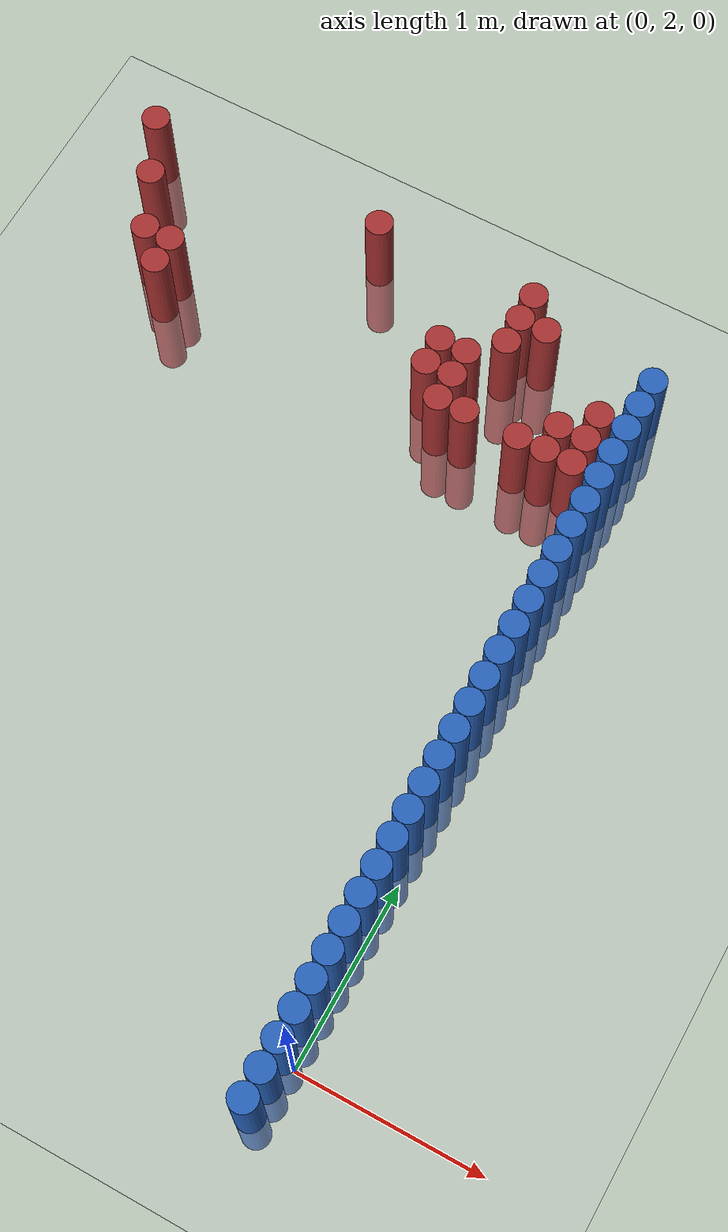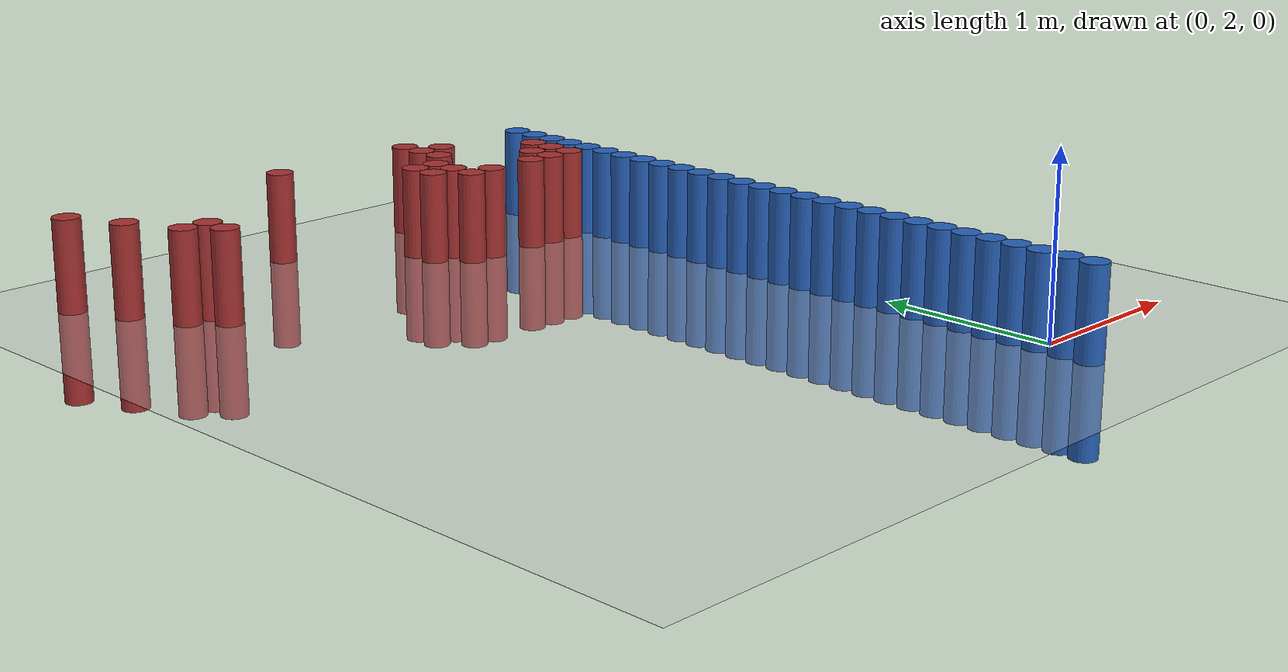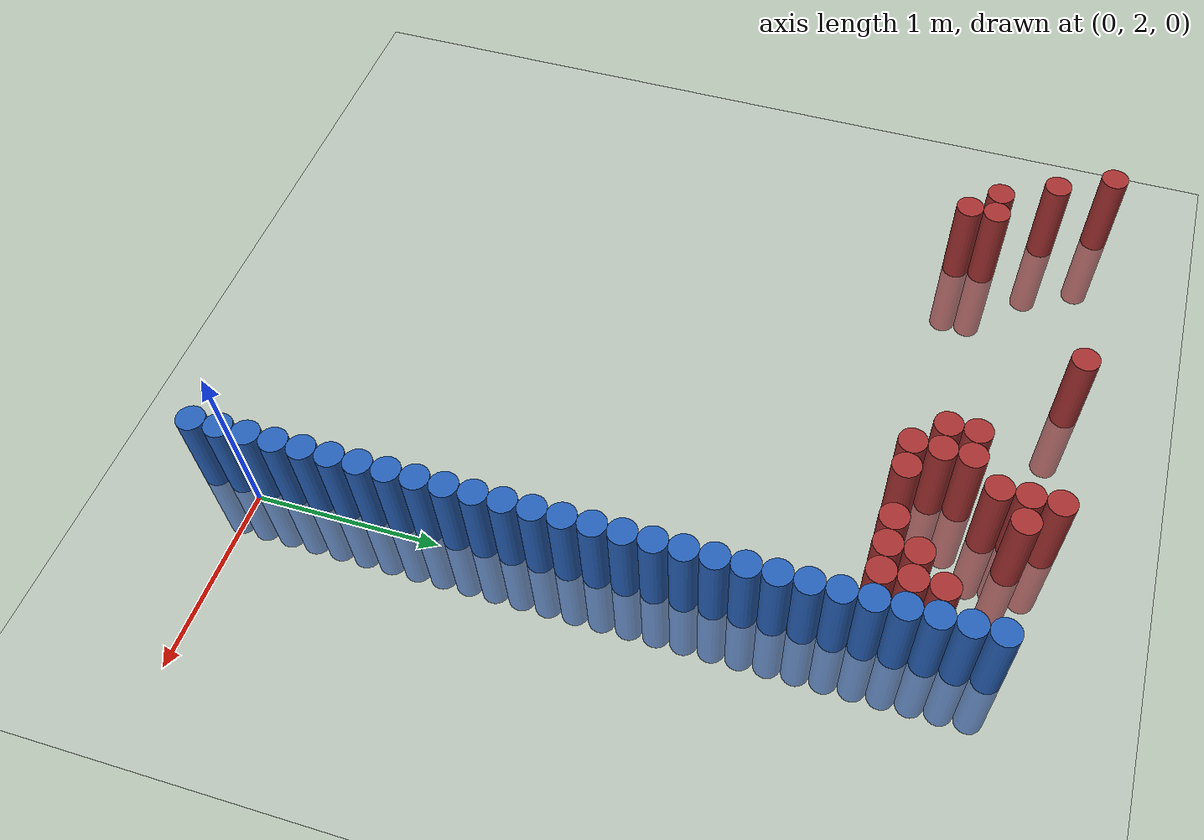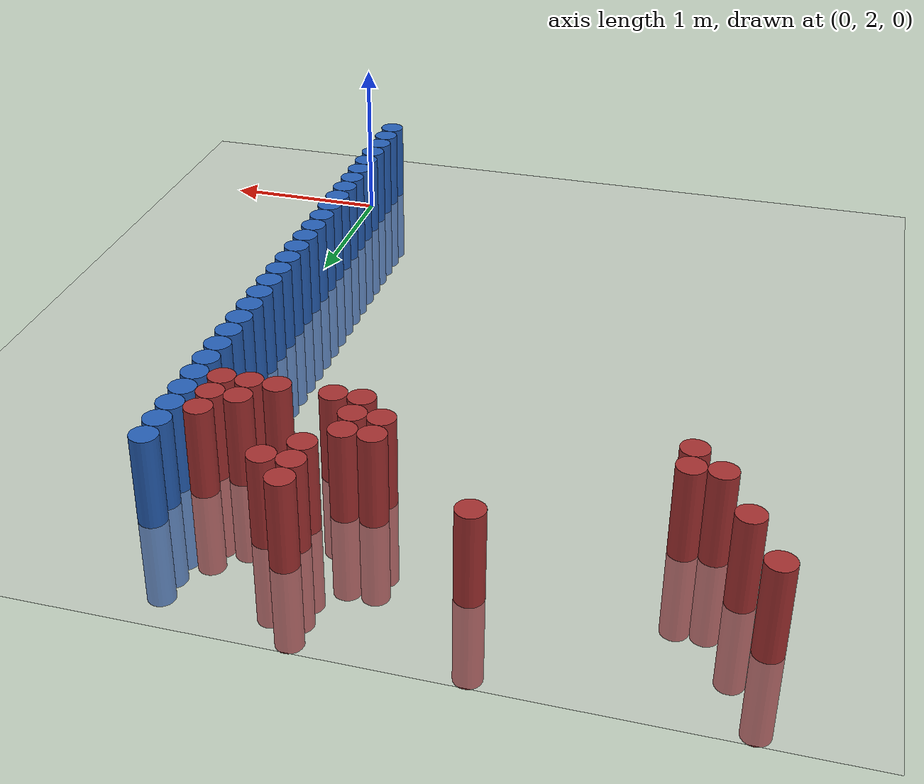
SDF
<sdf version="1.6">
 <world name="default">
  <model name="ground_plane">
   <static>1</static>
   <link name="link">
    <collision name="collision">
     <geometry><plane><normal>0 0 1</normal><size>100 100</size></plane></geometry>
     <surface><friction><ode><mu>100</mu><mu2>50</mu2></ode></friction></surface>
    </collision>
    <visual name="visual">
     <cast_shadows>0</cast_shadows>
     <geometry><plane><normal>0 0 1</normal><size>100 100</size></plane></geometry>
     <material>
      <script><uri>file://media/materials/scripts/gazebo.material</uri><name>Gazebo/Grey</name></script>
     </material>
    </visual>
   </link>
  </model>
  <model name="unit_cylinder_50">
   <static>1</static>
   <pose>-0.075000 1.725000 0.000000 0.000000 0.000000 0.000000</pose>
   <link name="link">
    <inertial>
     <mass>1</mass>
     <inertia><ixx>0.145833</ixx><ixy>0</ixy><ixz>0</ixz><iyy>0.145833</iyy><iyz>0</iyz><izz>0.125</izz></inertia>
    </inertial>
    <collision name="collision">
     <geometry><cylinder><radius>0.075000</radius><length>1</length></cylinder></geometry>
    </collision>
    <visual name="visual">
     <geometry><cylinder><radius>0.075000</radius><length>1</length></cylinder></geometry>
     <material>
      <ambient>0.152000 0.379000 0.720000 1</ambient>
      <diffuse>0.152000 0.379000 0.720000 1</diffuse>
     </material>
     <material>
      <script><name>Gazebo/Grey</name><uri>file://media/materials/scripts/gazebo.material</uri></script>
     </material>
    </visual>
   </link>
  </model>
  <model name="unit_cylinder_52">
   <static>1</static>
   <pose>-0.075000 1.875000 0.000000 0.000000 0.000000 0.000000</pose>
   <link name="link">
    <inertial>
     <mass>1</mass>
     <inertia><ixx>0.145833</ixx><ixy>0</ixy><ixz>0</ixz><iyy>0.145833</iyy><iyz>0</iyz><izz>0.125</izz></inertia>
    </inertial>
    <collision name="collision">
     <geometry><cylinder><radius>0.075000</radius><length>1</length></cylinder></geometry>
    </collision>
    <visual name="visual">
     <geometry><cylinder><radius>0.075000</radius><length>1</length></cylinder></geometry>
     <material>
      <ambient>0.152000 0.379000 0.720000 1</ambient>
      <diffuse>0.152000 0.379000 0.720000 1</diffuse>
     </material>
     <material>
      <script><name>Gazebo/Grey</name><uri>file://media/materials/scripts/gazebo.material</uri></script>
     </material>
    </visual>
   </link>
  </model>
  <model name="unit_cylinder_54">
   <static>1</static>
   <pose>-0.075000 2.025000 0.000000 0.000000 0.000000 0.000000</pose>
   <link name="link">
    <inertial>
     <mass>1</mass>
     <inertia><ixx>0.145833</ixx><ixy>0</ixy><ixz>0</ixz><iyy>0.145833</iyy><iyz>0</iyz><izz>0.125</izz></inertia>
    </inertial>
    <collision name="collision">
     <geometry><cylinder><radius>0.075000</radius><length>1</length></cylinder></geometry>
    </collision>
    <visual name="visual">
     <geometry><cylinder><radius>0.075000</radius><length>1</length></cylinder></geometry>
     <material>
      <ambient>0.152000 0.379000 0.720000 1</ambient>
      <diffuse>0.152000 0.379000 0.720000 1</diffuse>
     </material>
     <material>
      <script><name>Gazebo/Grey</name><uri>file://media/materials/scripts/gazebo.material</uri></script>
     </material>
    </visual>
   </link>
  </model>
  <model name="unit_cylinder_56">
   <static>1</static>
   <pose>-0.075000 2.175000 0.000000 0.000000 0.000000 0.000000</pose>
   <link name="link">
    <inertial>
     <mass>1</mass>
     <inertia><ixx>0.145833</ixx><ixy>0</ixy><ixz>0</ixz><iyy>0.145833</iyy><iyz>0</iyz><izz>0.125</izz></inertia>
    </inertial>
    <collision name="collision">
     <geometry><cylinder><radius>0.075000</radius><length>1</length></cylinder></geometry>
    </collision>
    <visual name="visual">
     <geometry><cylinder><radius>0.075000</radius><length>1</length></cylinder></geometry>
     <material>
      <ambient>0.152000 0.379000 0.720000 1</ambient>
      <diffuse>0.152000 0.379000 0.720000 1</diffuse>
     </material>
     <material>
      <script><name>Gazebo/Grey</name><uri>file://media/materials/scripts/gazebo.material</uri></script>
     </material>
    </visual>
   </link>
  </model>
  <model name="unit_cylinder_58">
   <static>1</static>
   <pose>-0.075000 2.325000 0.000000 0.000000 0.000000 0.000000</pose>
   <link name="link">
    <inertial>
     <mass>1</mass>
     <inertia><ixx>0.145833</ixx><ixy>0</ixy><ixz>0</ixz><iyy>0.145833</iyy><iyz>0</iyz><izz>0.125</izz></inertia>
    </inertial>
    <collision name="collision">
     <geometry><cylinder><radius>0.075000</radius><length>1</length></cylinder></geometry>
    </collision>
    <visual name="visual">
     <geometry><cylinder><radius>0.075000</radius><length>1</length></cylinder></geometry>
     <material>
      <ambient>0.152000 0.379000 0.720000 1</ambient>
      <diffuse>0.152000 0.379000 0.720000 1</diffuse>
     </material>
     <material>
      <script><name>Gazebo/Grey</name><uri>file://media/materials/scripts/gazebo.material</uri></script>
     </material>
    </visual>
   </link>
  </model>
  <model name="unit_cylinder_60">
   <static>1</static>
   <pose>-0.075000 2.475000 0.000000 0.000000 0.000000 0.000000</pose>
   <link name="link">
    <inertial>
     <mass>1</mass>
     <inertia><ixx>0.145833</ixx><ixy>0</ixy><ixz>0</ixz><iyy>0.145833</iyy><iyz>0</iyz><izz>0.125</izz></inertia>
    </inertial>
    <collision name="collision">
     <geometry><cylinder><radius>0.075000</radius><length>1</length></cylinder></geometry>
    </collision>
    <visual name="visual">
     <geometry><cylinder><radius>0.075000</radius><length>1</length></cylinder></geometry>
     <material>
      <ambient>0.152000 0.379000 0.720000 1</ambient>
      <diffuse>0.152000 0.379000 0.720000 1</diffuse>
     </material>
     <material>
      <script><name>Gazebo/Grey</name><uri>file://media/materials/scripts/gazebo.material</uri></script>
     </material>
    </visual>
   </link>
  </model>
  <model name="unit_cylinder_62">
   <static>1</static>
   <pose>-0.075000 2.625000 0.000000 0.000000 0.000000 0.000000</pose>
   <link name="link">
    <inertial>
     <mass>1</mass>
     <inertia><ixx>0.145833</ixx><ixy>0</ixy><ixz>0</ixz><iyy>0.145833</iyy><iyz>0</iyz><izz>0.125</izz></inertia>
    </inertial>
    <collision name="collision">
     <geometry><cylinder><radius>0.075000</radius><length>1</length></cylinder></geometry>
    </collision>
    <visual name="visual">
     <geometry><cylinder><radius>0.075000</radius><length>1</length></cylinder></geometry>
     <material>
      <ambient>0.152000 0.379000 0.720000 1</ambient>
      <diffuse>0.152000 0.379000 0.720000 1</diffuse>
     </material>
     <material>
      <script><name>Gazebo/Grey</name><uri>file://media/materials/scripts/gazebo.material</uri></script>
     </material>
    </visual>
   </link>
  </model>
  <model name="unit_cylinder_64">
   <static>1</static>
   <pose>-0.075000 2.775000 0.000000 0.000000 0.000000 0.000000</pose>
   <link name="link">
    <inertial>
     <mass>1</mass>
     <inertia><ixx>0.145833</ixx><ixy>0</ixy><ixz>0</ixz><iyy>0.145833</iyy><iyz>0</iyz><izz>0.125</izz></inertia>
    </inertial>
    <collision name="collision">
     <geometry><cylinder><radius>0.075000</radius><length>1</length></cylinder></geometry>
    </collision>
    <visual name="visual">
     <geometry><cylinder><radius>0.075000</radius><length>1</length></cylinder></geometry>
     <material>
      <ambient>0.152000 0.379000 0.720000 1</ambient>
      <diffuse>0.152000 0.379000 0.720000 1</diffuse>
     </material>
     <material>
      <script><name>Gazebo/Grey</name><uri>file://media/materials/scripts/gazebo.material</uri></script>
     </material>
    </visual>
   </link>
  </model>
  <model name="unit_cylinder_66">
   <static>1</static>
   <pose>-0.075000 2.925000 0.000000 0.000000 0.000000 0.000000</pose>
   <link name="link">
    <inertial>
     <mass>1</mass>
     <inertia><ixx>0.145833</ixx><ixy>0</ixy><ixz>0</ixz><iyy>0.145833</iyy><iyz>0</iyz><izz>0.125</izz></inertia>
    </inertial>
    <collision name="collision">
     <geometry><cylinder><radius>0.075000</radius><length>1</length></cylinder></geometry>
    </collision>
    <visual name="visual">
     <geometry><cylinder><radius>0.075000</radius><length>1</length></cylinder></geometry>
     <material>
      <ambient>0.152000 0.379000 0.720000 1</ambient>
      <diffuse>0.152000 0.379000 0.720000 1</diffuse>
     </material>
     <material>
      <script><name>Gazebo/Grey</name><uri>file://media/materials/scripts/gazebo.material</uri></script>
     </material>
    </visual>
   </link>
  </model>
  <model name="unit_cylinder_68">
   <static>1</static>
   <pose>-0.075000 3.075000 0.000000 0.000000 0.000000 0.000000</pose>
   <link name="link">
    <inertial>
     <mass>1</mass>
     <inertia><ixx>0.145833</ixx><ixy>0</ixy><ixz>0</ixz><iyy>0.145833</iyy><iyz>0</iyz><izz>0.125</izz></inertia>
    </inertial>
    <collision name="collision">
     <geometry><cylinder><radius>0.075000</radius><length>1</length></cylinder></geometry>
    </collision>
    <visual name="visual">
     <geometry><cylinder><radius>0.075000</radius><length>1</length></cylinder></geometry>
     <material>
      <ambient>0.152000 0.379000 0.720000 1</ambient>
      <diffuse>0.152000 0.379000 0.720000 1</diffuse>
     </material>
     <material>
      <script><name>Gazebo/Grey</name><uri>file://media/materials/scripts/gazebo.material</uri></script>
     </material>
    </visual>
   </link>
  </model>
  <model name="unit_cylinder_70">
   <static>1</static>
   <pose>-0.075000 3.225000 0.000000 0.000000 0.000000 0.000000</pose>
   <link name="link">
    <inertial>
     <mass>1</mass>
     <inertia><ixx>0.145833</ixx><ixy>0</ixy><ixz>0</ixz><iyy>0.145833</iyy><iyz>0</iyz><izz>0.125</izz></inertia>
    </inertial>
    <collision name="collision">
     <geometry><cylinder><radius>0.075000</radius><length>1</length></cylinder></geometry>
    </collision>
    <visual name="visual">
     <geometry><cylinder><radius>0.075000</radius><length>1</length></cylinder></geometry>
     <material>
      <ambient>0.152000 0.379000 0.720000 1</ambient>
      <diffuse>0.152000 0.379000 0.720000 1</diffuse>
     </material>
     <material>
      <script><name>Gazebo/Grey</name><uri>file://media/materials/scripts/gazebo.material</uri></script>
     </material>
    </visual>
   </link>
  </model>
  <model name="unit_cylinder_72">
   <static>1</static>
   <pose>-0.075000 3.375000 0.000000 0.000000 0.000000 0.000000</pose>
   <link name="link">
    <inertial>
     <mass>1</mass>
     <inertia><ixx>0.145833</ixx><ixy>0</ixy><ixz>0</ixz><iyy>0.145833</iyy><iyz>0</iyz><izz>0.125</izz></inertia>
    </inertial>
    <collision name="collision">
     <geometry><cylinder><radius>0.075000</radius><length>1</length></cylinder></geometry>
    </collision>
    <visual name="visual">
     <geometry><cylinder><radius>0.075000</radius><length>1</length></cylinder></geometry>
     <material>
      <ambient>0.152000 0.379000 0.720000 1</ambient>
      <diffuse>0.152000 0.379000 0.720000 1</diffuse>
     </material>
     <material>
      <script><name>Gazebo/Grey</name><uri>file://media/materials/scripts/gazebo.material</uri></script>
     </material>
    </visual>
   </link>
  </model>
  <model name="unit_cylinder_74">
   <static>1</static>
   <pose>-0.075000 3.525000 0.000000 0.000000 0.000000 0.000000</pose>
   <link name="link">
    <inertial>
     <mass>1</mass>
     <inertia><ixx>0.145833</ixx><ixy>0</ixy><ixz>0</ixz><iyy>0.145833</iyy><iyz>0</iyz><izz>0.125</izz></inertia>
    </inertial>
    <collision name="collision">
     <geometry><cylinder><radius>0.075000</radius><length>1</length></cylinder></geometry>
    </collision>
    <visual name="visual">
     <geometry><cylinder><radius>0.075000</radius><length>1</length></cylinder></geometry>
     <material>
      <ambient>0.152000 0.379000 0.720000 1</ambient>
      <diffuse>0.152000 0.379000 0.720000 1</diffuse>
     </material>
     <material>
      <script><name>Gazebo/Grey</name><uri>file://media/materials/scripts/gazebo.material</uri></script>
     </material>
    </visual>
   </link>
  </model>
  <model name="unit_cylinder_76">
   <static>1</static>
   <pose>-0.075000 3.675000 0.000000 0.000000 0.000000 0.000000</pose>
   <link name="link">
    <inertial>
     <mass>1</mass>
     <inertia><ixx>0.145833</ixx><ixy>0</ixy><ixz>0</ixz><iyy>0.145833</iyy><iyz>0</iyz><izz>0.125</izz></inertia>
    </inertial>
    <collision name="collision">
     <geometry><cylinder><radius>0.075000</radius><length>1</length></cylinder></geometry>
    </collision>
    <visual name="visual">
     <geometry><cylinder><radius>0.075000</radius><length>1</length></cylinder></geometry>
     <material>
      <ambient>0.152000 0.379000 0.720000 1</ambient>
      <diffuse>0.152000 0.379000 0.720000 1</diffuse>
     </material>
     <material>
      <script><name>Gazebo/Grey</name><uri>file://media/materials/scripts/gazebo.material</uri></script>
     </material>
    </visual>
   </link>
  </model>
  <model name="unit_cylinder_78">
   <static>1</static>
   <pose>-0.075000 3.825000 0.000000 0.000000 0.000000 0.000000</pose>
   <link name="link">
    <inertial>
     <mass>1</mass>
     <inertia><ixx>0.145833</ixx><ixy>0</ixy><ixz>0</ixz><iyy>0.145833</iyy><iyz>0</iyz><izz>0.125</izz></inertia>
    </inertial>
    <collision name="collision">
     <geometry><cylinder><radius>0.075000</radius><length>1</length></cylinder></geometry>
    </collision>
    <visual name="visual">
     <geometry><cylinder><radius>0.075000</radius><length>1</length></cylinder></geometry>
     <material>
      <ambient>0.152000 0.379000 0.720000 1</ambient>
      <diffuse>0.152000 0.379000 0.720000 1</diffuse>
     </material>
     <material>
      <script><name>Gazebo/Grey</name><uri>file://media/materials/scripts/gazebo.material</uri></script>
     </material>
    </visual>
   </link>
  </model>
  <model name="unit_cylinder_80">
   <static>1</static>
   <pose>-0.075000 3.975000 0.000000 0.000000 0.000000 0.000000</pose>
   <link name="link">
    <inertial>
     <mass>1</mass>
     <inertia><ixx>0.145833</ixx><ixy>0</ixy><ixz>0</ixz><iyy>0.145833</iyy><iyz>0</iyz><izz>0.125</izz></inertia>
    </inertial>
    <collision name="collision">
     <geometry><cylinder><radius>0.075000</radius><length>1</length></cylinder></geometry>
    </collision>
    <visual name="visual">
     <geometry><cylinder><radius>0.075000</radius><length>1</length></cylinder></geometry>
     <material>
      <ambient>0.152000 0.379000 0.720000 1</ambient>
      <diffuse>0.152000 0.379000 0.720000 1</diffuse>
     </material>
     <material>
      <script><name>Gazebo/Grey</name><uri>file://media/materials/scripts/gazebo.material</uri></script>
     </material>
    </visual>
   </link>
  </model>
  <model name="unit_cylinder_82">
   <static>1</static>
   <pose>-0.075000 4.125000 0.000000 0.000000 0.000000 0.000000</pose>
   <link name="link">
    <inertial>
     <mass>1</mass>
     <inertia><ixx>0.145833</ixx><ixy>0</ixy><ixz>0</ixz><iyy>0.145833</iyy><iyz>0</iyz><izz>0.125</izz></inertia>
    </inertial>
    <collision name="collision">
     <geometry><cylinder><radius>0.075000</radius><length>1</length></cylinder></geometry>
    </collision>
    <visual name="visual">
     <geometry><cylinder><radius>0.075000</radius><length>1</length></cylinder></geometry>
     <material>
      <ambient>0.152000 0.379000 0.720000 1</ambient>
      <diffuse>0.152000 0.379000 0.720000 1</diffuse>
     </material>
     <material>
      <script><name>Gazebo/Grey</name><uri>file://media/materials/scripts/gazebo.material</uri></script>
     </material>
    </visual>
   </link>
  </model>
  <model name="unit_cylinder_84">
   <static>1</static>
   <pose>-0.075000 4.275000 0.000000 0.000000 0.000000 0.000000</pose>
   <link name="link">
    <inertial>
     <mass>1</mass>
     <inertia><ixx>0.145833</ixx><ixy>0</ixy><ixz>0</ixz><iyy>0.145833</iyy><iyz>0</iyz><izz>0.125</izz></inertia>
    </inertial>
    <collision name="collision">
     <geometry><cylinder><radius>0.075000</radius><length>1</length></cylinder></geometry>
    </collision>
    <visual name="visual">
     <geometry><cylinder><radius>0.075000</radius><length>1</length></cylinder></geometry>
     <material>
      <ambient>0.152000 0.379000 0.720000 1</ambient>
      <diffuse>0.152000 0.379000 0.720000 1</diffuse>
     </material>
     <material>
      <script><name>Gazebo/Grey</name><uri>file://media/materials/scripts/gazebo.material</uri></script>
     </material>
    </visual>
   </link>
  </model>
  <model name="unit_cylinder_86">
   <static>1</static>
   <pose>-0.075000 4.425000 0.000000 0.000000 0.000000 0.000000</pose>
   <link name="link">
    <inertial>
     <mass>1</mass>
     <inertia><ixx>0.145833</ixx><ixy>0</ixy><ixz>0</ixz><iyy>0.145833</iyy><iyz>0</iyz><izz>0.125</izz></inertia>
    </inertial>
    <collision name="collision">
     <geometry><cylinder><radius>0.075000</radius><length>1</length></cylinder></geometry>
    </collision>
    <visual name="visual">
     <geometry><cylinder><radius>0.075000</radius><length>1</length></cylinder></geometry>
     <material>
      <ambient>0.152000 0.379000 0.720000 1</ambient>
      <diffuse>0.152000 0.379000 0.720000 1</diffuse>
     </material>
     <material>
      <script><name>Gazebo/Grey</name><uri>file://media/materials/scripts/gazebo.material</uri></script>
     </material>
    </visual>
   </link>
  </model>
  <model name="unit_cylinder_88">
   <static>1</static>
   <pose>-0.075000 4.575000 0.000000 0.000000 0.000000 0.000000</pose>
   <link name="link">
    <inertial>
     <mass>1</mass>
     <inertia><ixx>0.145833</ixx><ixy>0</ixy><ixz>0</ixz><iyy>0.145833</iyy><iyz>0</iyz><izz>0.125</izz></inertia>
    </inertial>
    <collision name="collision">
     <geometry><cylinder><radius>0.075000</radius><length>1</length></cylinder></geometry>
    </collision>
    <visual name="visual">
     <geometry><cylinder><radius>0.075000</radius><length>1</length></cylinder></geometry>
     <material>
      <ambient>0.152000 0.379000 0.720000 1</ambient>
      <diffuse>0.152000 0.379000 0.720000 1</diffuse>
     </material>
     <material>
      <script><name>Gazebo/Grey</name><uri>file://media/materials/scripts/gazebo.material</uri></script>
     </material>
    </visual>
   </link>
  </model>
  <model name="unit_cylinder_90">
   <static>1</static>
   <pose>-0.075000 4.725000 0.000000 0.000000 0.000000 0.000000</pose>
   <link name="link">
    <inertial>
     <mass>1</mass>
     <inertia><ixx>0.145833</ixx><ixy>0</ixy><ixz>0</ixz><iyy>0.145833</iyy><iyz>0</iyz><izz>0.125</izz></inertia>
    </inertial>
    <collision name="collision">
     <geometry><cylinder><radius>0.075000</radius><length>1</length></cylinder></geometry>
    </collision>
    <visual name="visual">
     <geometry><cylinder><radius>0.075000</radius><length>1</length></cylinder></geometry>
     <material>
      <ambient>0.152000 0.379000 0.720000 1</ambient>
      <diffuse>0.152000 0.379000 0.720000 1</diffuse>
     </material>
     <material>
      <script><name>Gazebo/Grey</name><uri>file://media/materials/scripts/gazebo.material</uri></script>
     </material>
    </visual>
   </link>
  </model>
  <model name="unit_cylinder_92">
   <static>1</static>
   <pose>-0.075000 4.875000 0.000000 0.000000 0.000000 0.000000</pose>
   <link name="link">
    <inertial>
     <mass>1</mass>
     <inertia><ixx>0.145833</ixx><ixy>0</ixy><ixz>0</ixz><iyy>0.145833</iyy><iyz>0</iyz><izz>0.125</izz></inertia>
    </inertial>
    <collision name="collision">
     <geometry><cylinder><radius>0.075000</radius><length>1</length></cylinder></geometry>
    </collision>
    <visual name="visual">
     <geometry><cylinder><radius>0.075000</radius><length>1</length></cylinder></geometry>
     <material>
      <ambient>0.152000 0.379000 0.720000 1</ambient>
      <diffuse>0.152000 0.379000 0.720000 1</diffuse>
     </material>
     <material>
      <script><name>Gazebo/Grey</name><uri>file://media/materials/scripts/gazebo.material</uri></script>
     </material>
    </visual>
   </link>
  </model>
  <model name="unit_cylinder_94">
   <static>1</static>
   <pose>-0.075000 5.025000 0.000000 0.000000 0.000000 0.000000</pose>
   <link name="link">
    <inertial>
     <mass>1</mass>
     <inertia><ixx>0.145833</ixx><ixy>0</ixy><ixz>0</ixz><iyy>0.145833</iyy><iyz>0</iyz><izz>0.125</izz></inertia>
    </inertial>
    <collision name="collision">
     <geometry><cylinder><radius>0.075000</radius><length>1</length></cylinder></geometry>
    </collision>
    <visual name="visual">
     <geometry><cylinder><radius>0.075000</radius><length>1</length></cylinder></geometry>
     <material>
      <ambient>0.152000 0.379000 0.720000 1</ambient>
      <diffuse>0.152000 0.379000 0.720000 1</diffuse>
     </material>
     <material>
      <script><name>Gazebo/Grey</name><uri>file://media/materials/scripts/gazebo.material</uri></script>
     </material>
    </visual>
   </link>
  </model>
  <model name="unit_cylinder_185">
   <static>1</static>
   <pose>-3.075000 5.925000 0.000000 0.000000 0.000000 0.000000</pose>
   <link name="link">
    <inertial>
     <mass>1</mass>
     <inertia><ixx>0.145833</ixx><ixy>0</ixy><ixz>0</ixz><iyy>0.145833</iyy><iyz>0</iyz><izz>0.125</izz></inertia>
    </inertial>
    <collision name="collision">
     <geometry><cylinder><radius>0.075000</radius><length>1</length></cylinder></geometry>
    </collision>
    <visual name="visual">
     <geometry><cylinder><radius>0.075000</radius><length>1</length></cylinder></geometry>
     <material>
      <ambient>0.648000 0.192000 0.192000 1</ambient>
      <diffuse>0.648000 0.192000 0.192000 1</diffuse>
     </material>
     <material>
      <script><name>Gazebo/Grey</name><uri>file://media/materials/scripts/gazebo.material</uri></script>
     </material>
    </visual>
   </link>
  </model>
  <model name="unit_cylinder_192">
   <static>1</static>
   <pose>-2.925000 5.625000 0.000000 0.000000 0.000000 0.000000</pose>
   <link name="link">
    <inertial>
     <mass>1</mass>
     <inertia><ixx>0.145833</ixx><ixy>0</ixy><ixz>0</ixz><iyy>0.145833</iyy><iyz>0</iyz><izz>0.125</izz></inertia>
    </inertial>
    <collision name="collision">
     <geometry><cylinder><radius>0.075000</radius><length>1</length></cylinder></geometry>
    </collision>
    <visual name="visual">
     <geometry><cylinder><radius>0.075000</radius><length>1</length></cylinder></geometry>
     <material>
      <ambient>0.648000 0.192000 0.192000 1</ambient>
      <diffuse>0.648000 0.192000 0.192000 1</diffuse>
     </material>
     <material>
      <script><name>Gazebo/Grey</name><uri>file://media/materials/scripts/gazebo.material</uri></script>
     </material>
    </visual>
   </link>
  </model>
  <model name="unit_cylinder_201">
   <static>1</static>
   <pose>-2.775000 5.325000 0.000000 0.000000 0.000000 0.000000</pose>
   <link name="link">
    <inertial>
     <mass>1</mass>
     <inertia><ixx>0.145833</ixx><ixy>0</ixy><ixz>0</ixz><iyy>0.145833</iyy><iyz>0</iyz><izz>0.125</izz></inertia>
    </inertial>
    <collision name="collision">
     <geometry><cylinder><radius>0.075000</radius><length>1</length></cylinder></geometry>
    </collision>
    <visual name="visual">
     <geometry><cylinder><radius>0.075000</radius><length>1</length></cylinder></geometry>
     <material>
      <ambient>0.648000 0.192000 0.192000 1</ambient>
      <diffuse>0.648000 0.192000 0.192000 1</diffuse>
     </material>
     <material>
      <script><name>Gazebo/Grey</name><uri>file://media/materials/scripts/gazebo.material</uri></script>
     </material>
    </visual>
   </link>
  </model>
  <model name="unit_cylinder_209">
   <static>1</static>
   <pose>-2.625000 5.175000 0.000000 0.000000 0.000000 0.000000</pose>
   <link name="link">
    <inertial>
     <mass>1</mass>
     <inertia><ixx>0.145833</ixx><ixy>0</ixy><ixz>0</ixz><iyy>0.145833</iyy><iyz>0</iyz><izz>0.125</izz></inertia>
    </inertial>
    <collision name="collision">
     <geometry><cylinder><radius>0.075000</radius><length>1</length></cylinder></geometry>
    </collision>
    <visual name="visual">
     <geometry><cylinder><radius>0.075000</radius><length>1</length></cylinder></geometry>
     <material>
      <ambient>0.648000 0.192000 0.192000 1</ambient>
      <diffuse>0.648000 0.192000 0.192000 1</diffuse>
     </material>
     <material>
      <script><name>Gazebo/Grey</name><uri>file://media/materials/scripts/gazebo.material</uri></script>
     </material>
    </visual>
   </link>
  </model>
  <model name="unit_cylinder_210">
   <static>1</static>
   <pose>-2.625000 5.325000 0.000000 0.000000 0.000000 0.000000</pose>
   <link name="link">
    <inertial>
     <mass>1</mass>
     <inertia><ixx>0.145833</ixx><ixy>0</ixy><ixz>0</ixz><iyy>0.145833</iyy><iyz>0</iyz><izz>0.125</izz></inertia>
    </inertial>
    <collision name="collision">
     <geometry><cylinder><radius>0.075000</radius><length>1</length></cylinder></geometry>
    </collision>
    <visual name="visual">
     <geometry><cylinder><radius>0.075000</radius><length>1</length></cylinder></geometry>
     <material>
      <ambient>0.648000 0.192000 0.192000 1</ambient>
      <diffuse>0.648000 0.192000 0.192000 1</diffuse>
     </material>
     <material>
      <script><name>Gazebo/Grey</name><uri>file://media/materials/scripts/gazebo.material</uri></script>
     </material>
    </visual>
   </link>
  </model>
  <model name="unit_cylinder_217">
   <static>1</static>
   <pose>-1.725000 5.925000 0.000000 0.000000 0.000000 0.000000</pose>
   <link name="link">
    <inertial>
     <mass>1</mass>
     <inertia><ixx>0.145833</ixx><ixy>0</ixy><ixz>0</ixz><iyy>0.145833</iyy><iyz>0</iyz><izz>0.125</izz></inertia>
    </inertial>
    <collision name="collision">
     <geometry><cylinder><radius>0.075000</radius><length>1</length></cylinder></geometry>
    </collision>
    <visual name="visual">
     <geometry><cylinder><radius>0.075000</radius><length>1</length></cylinder></geometry>
     <material>
      <ambient>0.648000 0.192000 0.192000 1</ambient>
      <diffuse>0.648000 0.192000 0.192000 1</diffuse>
     </material>
     <material>
      <script><name>Gazebo/Grey</name><uri>file://media/materials/scripts/gazebo.material</uri></script>
     </material>
    </visual>
   </link>
  </model>
  <model name="unit_cylinder_235">
   <static>1</static>
   <pose>-1.125000 5.325000 0.000000 0.000000 0.000000 0.000000</pose>
   <link name="link">
    <inertial>
     <mass>1</mass>
     <inertia><ixx>0.145833</ixx><ixy>0</ixy><ixz>0</ixz><iyy>0.145833</iyy><iyz>0</iyz><izz>0.125</izz></inertia>
    </inertial>
    <collision name="collision">
     <geometry><cylinder><radius>0.075000</radius><length>1</length></cylinder></geometry>
    </collision>
    <visual name="visual">
     <geometry><cylinder><radius>0.075000</radius><length>1</length></cylinder></geometry>
     <material>
      <ambient>0.648000 0.192000 0.192000 1</ambient>
      <diffuse>0.648000 0.192000 0.192000 1</diffuse>
     </material>
     <material>
      <script><name>Gazebo/Grey</name><uri>file://media/materials/scripts/gazebo.material</uri></script>
     </material>
    </visual>
   </link>
  </model>
  <model name="unit_cylinder_236">
   <static>1</static>
   <pose>-1.125000 5.475000 0.000000 0.000000 0.000000 0.000000</pose>
   <link name="link">
    <inertial>
     <mass>1</mass>
     <inertia><ixx>0.145833</ixx><ixy>0</ixy><ixz>0</ixz><iyy>0.145833</iyy><iyz>0</iyz><izz>0.125</izz></inertia>
    </inertial>
    <collision name="collision">
     <geometry><cylinder><radius>0.075000</radius><length>1</length></cylinder></geometry>
    </collision>
    <visual name="visual">
     <geometry><cylinder><radius>0.075000</radius><length>1</length></cylinder></geometry>
     <material>
      <ambient>0.648000 0.192000 0.192000 1</ambient>
      <diffuse>0.648000 0.192000 0.192000 1</diffuse>
     </material>
     <material>
      <script><name>Gazebo/Grey</name><uri>file://media/materials/scripts/gazebo.material</uri></script>
     </material>
    </visual>
   </link>
  </model>
  <model name="unit_cylinder_248">
   <static>1</static>
   <pose>-0.975000 5.175000 0.000000 0.000000 0.000000 0.000000</pose>
   <link name="link">
    <inertial>
     <mass>1</mass>
     <inertia><ixx>0.145833</ixx><ixy>0</ixy><ixz>0</ixz><iyy>0.145833</iyy><iyz>0</iyz><izz>0.125</izz></inertia>
    </inertial>
    <collision name="collision">
     <geometry><cylinder><radius>0.075000</radius><length>1</length></cylinder></geometry>
    </collision>
    <visual name="visual">
     <geometry><cylinder><radius>0.075000</radius><length>1</length></cylinder></geometry>
     <material>
      <ambient>0.648000 0.192000 0.192000 1</ambient>
      <diffuse>0.648000 0.192000 0.192000 1</diffuse>
     </material>
     <material>
      <script><name>Gazebo/Grey</name><uri>file://media/materials/scripts/gazebo.material</uri></script>
     </material>
    </visual>
   </link>
  </model>
  <model name="unit_cylinder_249">
   <static>1</static>
   <pose>-0.975000 5.325000 0.000000 0.000000 0.000000 0.000000</pose>
   <link name="link">
    <inertial>
     <mass>1</mass>
     <inertia><ixx>0.145833</ixx><ixy>0</ixy><ixz>0</ixz><iyy>0.145833</iyy><iyz>0</iyz><izz>0.125</izz></inertia>
    </inertial>
    <collision name="collision">
     <geometry><cylinder><radius>0.075000</radius><length>1</length></cylinder></geometry>
    </collision>
    <visual name="visual">
     <geometry><cylinder><radius>0.075000</radius><length>1</length></cylinder></geometry>
     <material>
      <ambient>0.648000 0.192000 0.192000 1</ambient>
      <diffuse>0.648000 0.192000 0.192000 1</diffuse>
     </material>
     <material>
      <script><name>Gazebo/Grey</name><uri>file://media/materials/scripts/gazebo.material</uri></script>
     </material>
    </visual>
   </link>
  </model>
  <model name="unit_cylinder_250">
   <static>1</static>
   <pose>-0.975000 5.475000 0.000000 0.000000 0.000000 0.000000</pose>
   <link name="link">
    <inertial>
     <mass>1</mass>
     <inertia><ixx>0.145833</ixx><ixy>0</ixy><ixz>0</ixz><iyy>0.145833</iyy><iyz>0</iyz><izz>0.125</izz></inertia>
    </inertial>
    <collision name="collision">
     <geometry><cylinder><radius>0.075000</radius><length>1</length></cylinder></geometry>
    </collision>
    <visual name="visual">
     <geometry><cylinder><radius>0.075000</radius><length>1</length></cylinder></geometry>
     <material>
      <ambient>0.648000 0.192000 0.192000 1</ambient>
      <diffuse>0.648000 0.192000 0.192000 1</diffuse>
     </material>
     <material>
      <script><name>Gazebo/Grey</name><uri>file://media/materials/scripts/gazebo.material</uri></script>
     </material>
    </visual>
   </link>
  </model>
  <model name="unit_cylinder_265">
   <static>1</static>
   <pose>-0.825000 5.175000 0.000000 0.000000 0.000000 0.000000</pose>
   <link name="link">
    <inertial>
     <mass>1</mass>
     <inertia><ixx>0.145833</ixx><ixy>0</ixy><ixz>0</ixz><iyy>0.145833</iyy><iyz>0</iyz><izz>0.125</izz></inertia>
    </inertial>
    <collision name="collision">
     <geometry><cylinder><radius>0.075000</radius><length>1</length></cylinder></geometry>
    </collision>
    <visual name="visual">
     <geometry><cylinder><radius>0.075000</radius><length>1</length></cylinder></geometry>
     <material>
      <ambient>0.648000 0.192000 0.192000 1</ambient>
      <diffuse>0.648000 0.192000 0.192000 1</diffuse>
     </material>
     <material>
      <script><name>Gazebo/Grey</name><uri>file://media/materials/scripts/gazebo.material</uri></script>
     </material>
    </visual>
   </link>
  </model>
  <model name="unit_cylinder_266">
   <static>1</static>
   <pose>-0.825000 5.625000 0.000000 0.000000 0.000000 0.000000</pose>
   <link name="link">
    <inertial>
     <mass>1</mass>
     <inertia><ixx>0.145833</ixx><ixy>0</ixy><ixz>0</ixz><iyy>0.145833</iyy><iyz>0</iyz><izz>0.125</izz></inertia>
    </inertial>
    <collision name="collision">
     <geometry><cylinder><radius>0.075000</radius><length>1</length></cylinder></geometry>
    </collision>
    <visual name="visual">
     <geometry><cylinder><radius>0.075000</radius><length>1</length></cylinder></geometry>
     <material>
      <ambient>0.648000 0.192000 0.192000 1</ambient>
      <diffuse>0.648000 0.192000 0.192000 1</diffuse>
     </material>
     <material>
      <script><name>Gazebo/Grey</name><uri>file://media/materials/scripts/gazebo.material</uri></script>
     </material>
    </visual>
   </link>
  </model>
  <model name="unit_cylinder_267">
   <static>1</static>
   <pose>-0.825000 5.775000 0.000000 0.000000 0.000000 0.000000</pose>
   <link name="link">
    <inertial>
     <mass>1</mass>
     <inertia><ixx>0.145833</ixx><ixy>0</ixy><ixz>0</ixz><iyy>0.145833</iyy><iyz>0</iyz><izz>0.125</izz></inertia>
    </inertial>
    <collision name="collision">
     <geometry><cylinder><radius>0.075000</radius><length>1</length></cylinder></geometry>
    </collision>
    <visual name="visual">
     <geometry><cylinder><radius>0.075000</radius><length>1</length></cylinder></geometry>
     <material>
      <ambient>0.648000 0.192000 0.192000 1</ambient>
      <diffuse>0.648000 0.192000 0.192000 1</diffuse>
     </material>
     <material>
      <script><name>Gazebo/Grey</name><uri>file://media/materials/scripts/gazebo.material</uri></script>
     </material>
    </visual>
   </link>
  </model>
  <model name="unit_cylinder_268">
   <static>1</static>
   <pose>-0.825000 5.925000 0.000000 0.000000 0.000000 0.000000</pose>
   <link name="link">
    <inertial>
     <mass>1</mass>
     <inertia><ixx>0.145833</ixx><ixy>0</ixy><ixz>0</ixz><iyy>0.145833</iyy><iyz>0</iyz><izz>0.125</izz></inertia>
    </inertial>
    <collision name="collision">
     <geometry><cylinder><radius>0.075000</radius><length>1</length></cylinder></geometry>
    </collision>
    <visual name="visual">
     <geometry><cylinder><radius>0.075000</radius><length>1</length></cylinder></geometry>
     <material>
      <ambient>0.648000 0.192000 0.192000 1</ambient>
      <diffuse>0.648000 0.192000 0.192000 1</diffuse>
     </material>
     <material>
      <script><name>Gazebo/Grey</name><uri>file://media/materials/scripts/gazebo.material</uri></script>
     </material>
    </visual>
   </link>
  </model>
  <model name="unit_cylinder_281">
   <static>1</static>
   <pose>-0.675000 5.775000 0.000000 0.000000 0.000000 0.000000</pose>
   <link name="link">
    <inertial>
     <mass>1</mass>
     <inertia><ixx>0.145833</ixx><ixy>0</ixy><ixz>0</ixz><iyy>0.145833</iyy><iyz>0</iyz><izz>0.125</izz></inertia>
    </inertial>
    <collision name="collision">
     <geometry><cylinder><radius>0.075000</radius><length>1</length></cylinder></geometry>
    </collision>
    <visual name="visual">
     <geometry><cylinder><radius>0.075000</radius><length>1</length></cylinder></geometry>
     <material>
      <ambient>0.648000 0.192000 0.192000 1</ambient>
      <diffuse>0.648000 0.192000 0.192000 1</diffuse>
     </material>
     <material>
      <script><name>Gazebo/Grey</name><uri>file://media/materials/scripts/gazebo.material</uri></script>
     </material>
    </visual>
   </link>
  </model>
  <model name="unit_cylinder_289">
   <static>1</static>
   <pose>-0.525000 5.175000 0.000000 0.000000 0.000000 0.000000</pose>
   <link name="link">
    <inertial>
     <mass>1</mass>
     <inertia><ixx>0.145833</ixx><ixy>0</ixy><ixz>0</ixz><iyy>0.145833</iyy><iyz>0</iyz><izz>0.125</izz></inertia>
    </inertial>
    <collision name="collision">
     <geometry><cylinder><radius>0.075000</radius><length>1</length></cylinder></geometry>
    </collision>
    <visual name="visual">
     <geometry><cylinder><radius>0.075000</radius><length>1</length></cylinder></geometry>
     <material>
      <ambient>0.648000 0.192000 0.192000 1</ambient>
      <diffuse>0.648000 0.192000 0.192000 1</diffuse>
     </material>
     <material>
      <script><name>Gazebo/Grey</name><uri>file://media/materials/scripts/gazebo.material</uri></script>
     </material>
    </visual>
   </link>
  </model>
  <model name="unit_cylinder_295">
   <static>1</static>
   <pose>-0.375000 5.175000 0.000000 0.000000 0.000000 0.000000</pose>
   <link name="link">
    <inertial>
     <mass>1</mass>
     <inertia><ixx>0.145833</ixx><ixy>0</ixy><ixz>0</ixz><iyy>0.145833</iyy><iyz>0</iyz><izz>0.125</izz></inertia>
    </inertial>
    <collision name="collision">
     <geometry><cylinder><radius>0.075000</radius><length>1</length></cylinder></geometry>
    </collision>
    <visual name="visual">
     <geometry><cylinder><radius>0.075000</radius><length>1</length></cylinder></geometry>
     <material>
      <ambient>0.648000 0.192000 0.192000 1</ambient>
      <diffuse>0.648000 0.192000 0.192000 1</diffuse>
     </material>
     <material>
      <script><name>Gazebo/Grey</name><uri>file://media/materials/scripts/gazebo.material</uri></script>
     </material>
    </visual>
   </link>
  </model>
  <model name="unit_cylinder_296">
   <static>1</static>
   <pose>-0.375000 5.325000 0.000000 0.000000 0.000000 0.000000</pose>
   <link name="link">
    <inertial>
     <mass>1</mass>
     <inertia><ixx>0.145833</ixx><ixy>0</ixy><ixz>0</ixz><iyy>0.145833</iyy><iyz>0</iyz><izz>0.125</izz></inertia>
    </inertial>
    <collision name="collision">
     <geometry><cylinder><radius>0.075000</radius><length>1</length></cylinder></geometry>
    </collision>
    <visual name="visual">
     <geometry><cylinder><radius>0.075000</radius><length>1</length></cylinder></geometry>
     <material>
      <ambient>0.648000 0.192000 0.192000 1</ambient>
      <diffuse>0.648000 0.192000 0.192000 1</diffuse>
     </material>
     <material>
      <script><name>Gazebo/Grey</name><uri>file://media/materials/scripts/gazebo.material</uri></script>
     </material>
    </visual>
   </link>
  </model>
  <model name="unit_cylinder_303">
   <static>1</static>
   <pose>-0.225000 5.175000 0.000000 0.000000 0.000000 0.000000</pose>
   <link name="link">
    <inertial>
     <mass>1</mass>
     <inertia><ixx>0.145833</ixx><ixy>0</ixy><ixz>0</ixz><iyy>0.145833</iyy><iyz>0</iyz><izz>0.125</izz></inertia>
    </inertial>
    <collision name="collision">
     <geometry><cylinder><radius>0.075000</radius><length>1</length></cylinder></geometry>
    </collision>
    <visual name="visual">
     <geometry><cylinder><radius>0.075000</radius><length>1</length></cylinder></geometry>
     <material>
      <ambient>0.648000 0.192000 0.192000 1</ambient>
      <diffuse>0.648000 0.192000 0.192000 1</diffuse>
     </material>
     <material>
      <script><name>Gazebo/Grey</name><uri>file://media/materials/scripts/gazebo.material</uri></script>
     </material>
    </visual>
   </link>
  </model>
  <model name="unit_cylinder_304">
   <static>1</static>
   <pose>-0.225000 5.325000 0.000000 0.000000 0.000000 0.000000</pose>
   <link name="link">
    <inertial>
     <mass>1</mass>
     <inertia><ixx>0.145833</ixx><ixy>0</ixy><ixz>0</ixz><iyy>0.145833</iyy><iyz>0</iyz><izz>0.125</izz></inertia>
    </inertial>
    <collision name="collision">
     <geometry><cylinder><radius>0.075000</radius><length>1</length></cylinder></geometry>
    </collision>
    <visual name="visual">
     <geometry><cylinder><radius>0.075000</radius><length>1</length></cylinder></geometry>
     <material>
      <ambient>0.648000 0.192000 0.192000 1</ambient>
      <diffuse>0.648000 0.192000 0.192000 1</diffuse>
     </material>
     <material>
      <script><name>Gazebo/Grey</name><uri>file://media/materials/scripts/gazebo.material</uri></script>
     </material>
    </visual>
   </link>
  </model>
  <model name="unit_cylinder_305">
   <static>1</static>
   <pose>-0.225000 5.475000 0.000000 0.000000 0.000000 0.000000</pose>
   <link name="link">
    <inertial>
     <mass>1</mass>
     <inertia><ixx>0.145833</ixx><ixy>0</ixy><ixz>0</ixz><iyy>0.145833</iyy><iyz>0</iyz><izz>0.125</izz></inertia>
    </inertial>
    <collision name="collision">
     <geometry><cylinder><radius>0.075000</radius><length>1</length></cylinder></geometry>
    </collision>
    <visual name="visual">
     <geometry><cylinder><radius>0.075000</radius><length>1</length></cylinder></geometry>
     <material>
      <ambient>0.648000 0.192000 0.192000 1</ambient>
      <diffuse>0.648000 0.192000 0.192000 1</diffuse>
     </material>
     <material>
      <script><name>Gazebo/Grey</name><uri>file://media/materials/scripts/gazebo.material</uri></script>
     </material>
    </visual>
   </link>
  </model>
  <model name="unit_cylinder_319">
   <static>1</static>
   <pose>-0.075000 5.175000 0.000000 0.000000 0.000000 0.000000</pose>
   <link name="link">
    <inertial>
     <mass>1</mass>
     <inertia><ixx>0.145833</ixx><ixy>0</ixy><ixz>0</ixz><iyy>0.145833</iyy><iyz>0</iyz><izz>0.125</izz></inertia>
    </inertial>
    <collision name="collision">
     <geometry><cylinder><radius>0.075000</radius><length>1</length></cylinder></geometry>
    </collision>
    <visual name="visual">
     <geometry><cylinder><radius>0.075000</radius><length>1</length></cylinder></geometry>
     <material>
      <ambient>0.152000 0.379000 0.720000 1</ambient>
      <diffuse>0.152000 0.379000 0.720000 1</diffuse>
     </material>
     <material>
      <script><name>Gazebo/Grey</name><uri>file://media/materials/scripts/gazebo.material</uri></script>
     </material>
    </visual>
   </link>
  </model>
  <model name="unit_cylinder_320">
   <static>1</static>
   <pose>-0.075000 5.325000 0.000000 0.000000 0.000000 0.000000</pose>
   <link name="link">
    <inertial>
     <mass>1</mass>
     <inertia><ixx>0.145833</ixx><ixy>0</ixy><ixz>0</ixz><iyy>0.145833</iyy><iyz>0</iyz><izz>0.125</izz></inertia>
    </inertial>
    <collision name="collision">
     <geometry><cylinder><radius>0.075000</radius><length>1</length></cylinder></geometry>
    </collision>
    <visual name="visual">
     <geometry><cylinder><radius>0.075000</radius><length>1</length></cylinder></geometry>
     <material>
      <ambient>0.152000 0.379000 0.720000 1</ambient>
      <diffuse>0.152000 0.379000 0.720000 1</diffuse>
     </material>
     <material>
      <script><name>Gazebo/Grey</name><uri>file://media/materials/scripts/gazebo.material</uri></script>
     </material>
    </visual>
   </link>
  </model>
  <model name="unit_cylinder_321">
   <static>1</static>
   <pose>-0.075000 5.475000 0.000000 0.000000 0.000000 0.000000</pose>
   <link name="link">
    <inertial>
     <mass>1</mass>
     <inertia><ixx>0.145833</ixx><ixy>0</ixy><ixz>0</ixz><iyy>0.145833</iyy><iyz>0</iyz><izz>0.125</izz></inertia>
    </inertial>
    <collision name="collision">
     <geometry><cylinder><radius>0.075000</radius><length>1</length></cylinder></geometry>
    </collision>
    <visual name="visual">
     <geometry><cylinder><radius>0.075000</radius><length>1</length></cylinder></geometry>
     <material>
      <ambient>0.152000 0.379000 0.720000 1</ambient>
      <diffuse>0.152000 0.379000 0.720000 1</diffuse>
     </material>
     <material>
      <script><name>Gazebo/Grey</name><uri>file://media/materials/scripts/gazebo.material</uri></script>
     </material>
    </visual>
   </link>
  </model>
  <model name="unit_cylinder_322">
   <static>1</static>
   <pose>-0.075000 5.625000 0.000000 0.000000 0.000000 0.000000</pose>
   <link name="link">
    <inertial>
     <mass>1</mass>
     <inertia><ixx>0.145833</ixx><ixy>0</ixy><ixz>0</ixz><iyy>0.145833</iyy><iyz>0</iyz><izz>0.125</izz></inertia>
    </inertial>
    <collision name="collision">
     <geometry><cylinder><radius>0.075000</radius><length>1</length></cylinder></geometry>
    </collision>
    <visual name="visual">
     <geometry><cylinder><radius>0.075000</radius><length>1</length></cylinder></geometry>
     <material>
      <ambient>0.152000 0.379000 0.720000 1</ambient>
      <diffuse>0.152000 0.379000 0.720000 1</diffuse>
     </material>
     <material>
      <script><name>Gazebo/Grey</name><uri>file://media/materials/scripts/gazebo.material</uri></script>
     </material>
    </visual>
   </link>
  </model>
  <model name="unit_cylinder_323">
   <static>1</static>
   <pose>-0.075000 5.775000 0.000000 0.000000 0.000000 0.000000</pose>
   <link name="link">
    <inertial>
     <mass>1</mass>
     <inertia><ixx>0.145833</ixx><ixy>0</ixy><ixz>0</ixz><iyy>0.145833</iyy><iyz>0</iyz><izz>0.125</izz></inertia>
    </inertial>
    <collision name="collision">
     <geometry><cylinder><radius>0.075000</radius><length>1</length></cylinder></geometry>
    </collision>
    <visual name="visual">
     <geometry><cylinder><radius>0.075000</radius><length>1</length></cylinder></geometry>
     <material>
      <ambient>0.152000 0.379000 0.720000 1</ambient>
      <diffuse>0.152000 0.379000 0.720000 1</diffuse>
     </material>
     <material>
      <script><name>Gazebo/Grey</name><uri>file://media/materials/scripts/gazebo.material</uri></script>
     </material>
    </visual>
   </link>
  </model>
 </world>
</sdf>
